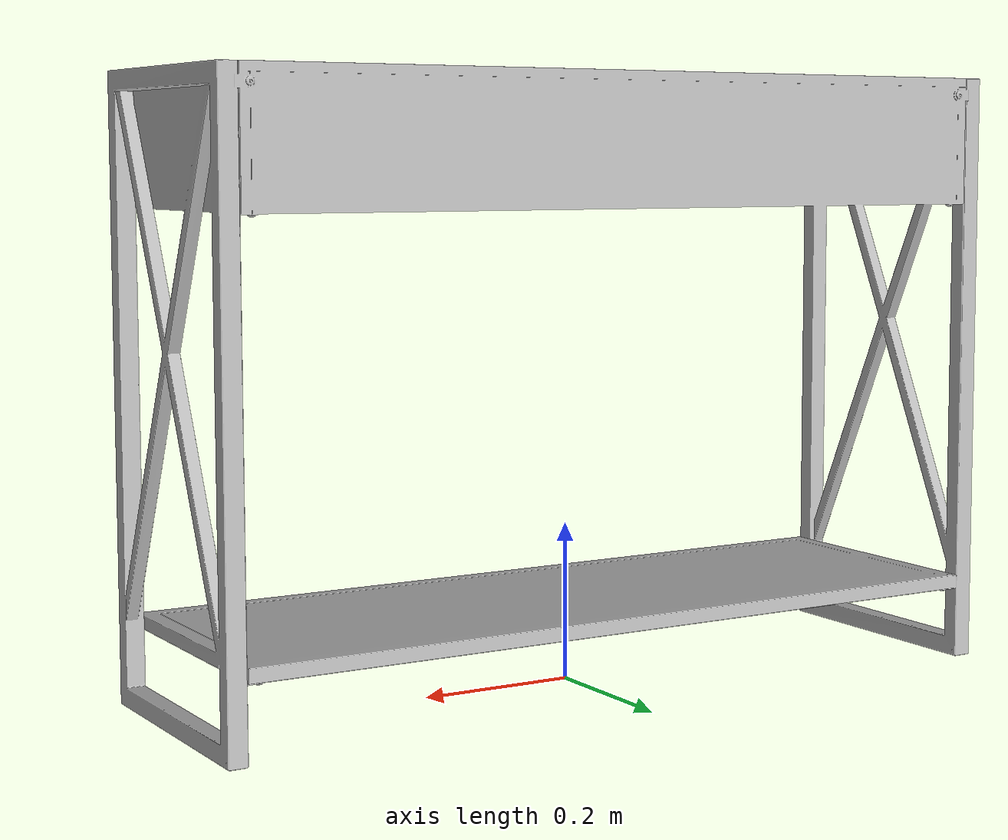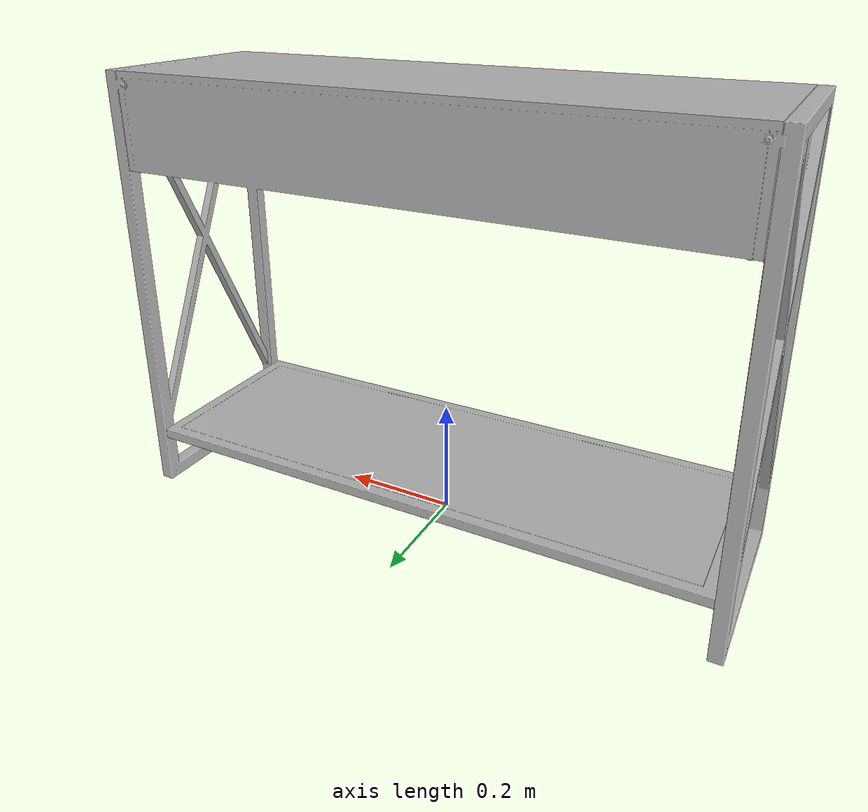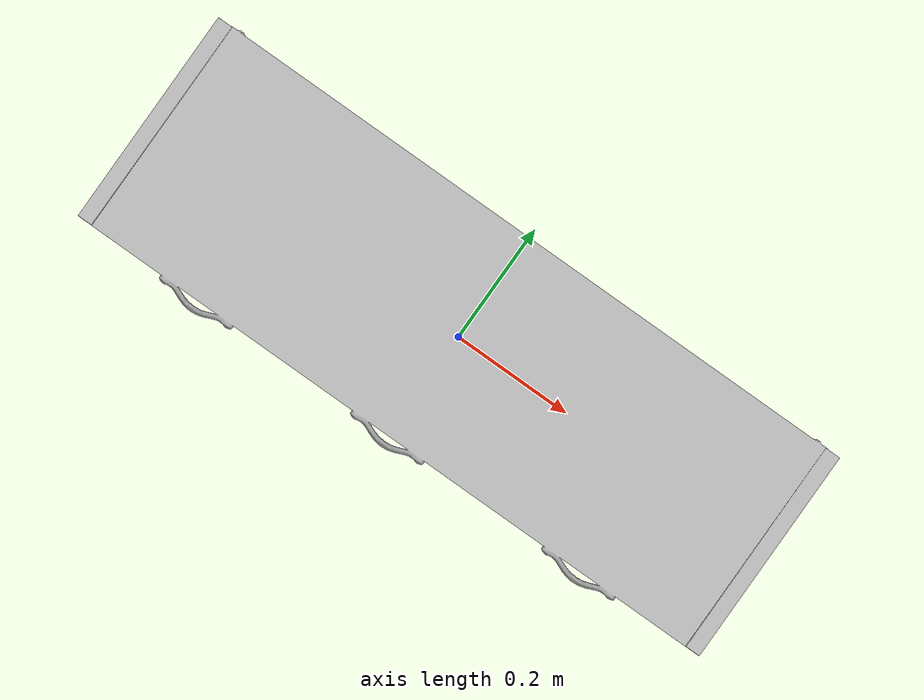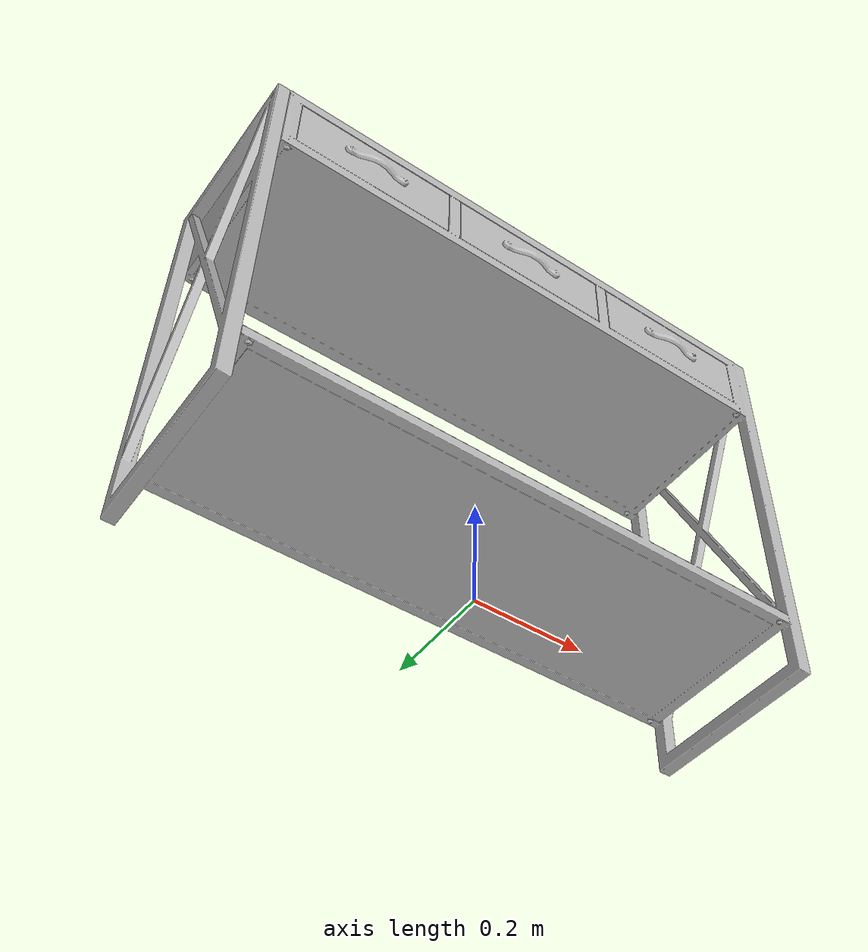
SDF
<sdf version="1.6">
	<model name="Cabinets_O34efdbc7cd71_lod0">
		<link name="main_link">
			<visual name="visual_RootNode">
				<geometry>
					<mesh>
						<uri>model://Cabinets_O34efdbc7cd71_lod0/meshes/visual_RootNode.dae</uri>
					</mesh>
				</geometry>
			</visual>
			<collision name="collision_RootNode_lod0_0">
				<geometry>
					<mesh>
						<uri>model://Cabinets_O34efdbc7cd71_lod0/meshes/collision_RootNode_lod0_0.dae</uri>
					</mesh>
				</geometry>
			</collision>
		</link>
	</model>
</sdf>
